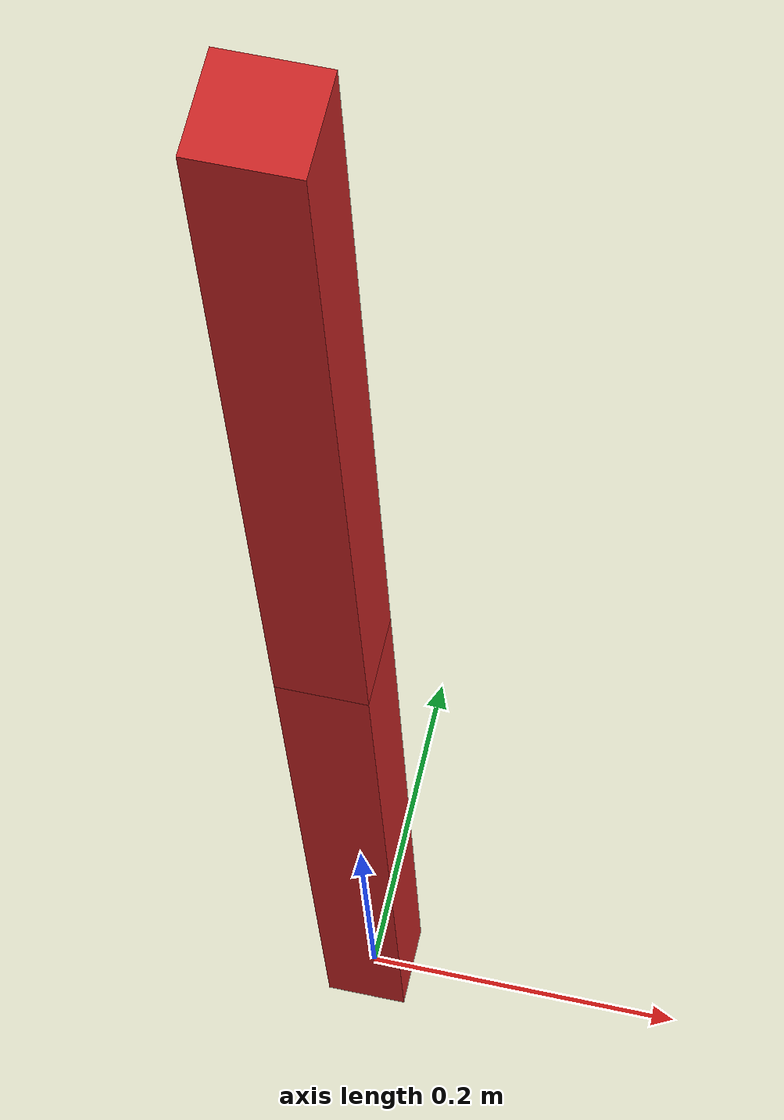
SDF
<sdf version='1.5'>
  <model name='twolink'>
    <link name='link_1'>
      <pose frame=''>0 0 1 0 -0 0</pose>
      <inertial>
        <pose frame=''>0 0 -0.25 0 -0 0</pose>
        <mass>9.375</mass>
        <inertia>
          <ixx>0.197266</ixx>
          <ixy>0</ixy>
          <ixz>0</ixz>
          <iyy>0.197266</iyy>
          <iyz>0</iyz>
          <izz>0.00390625</izz>
        </inertia>
      </inertial>
      <visual name='link_1_visual'>
        <pose frame=''>0 0 -0.25 0 -0 0</pose>
        <geometry>
          <box>
            <size>0.05 0.05 0.5</size>
          </box>
        </geometry>
        <material>
          <script>
            <name>Gazebo/Red</name>
            <uri>__default__</uri>
          </script>
        </material>
      </visual>
      <gravity>1</gravity>
      <velocity_decay/>
      <self_collide>1</self_collide>
    </link>
    <joint name='joint_1' type='revolute'>
      <child>link_1</child>
      <parent>world</parent>
      <axis>
        <xyz>1 0 0</xyz>
        <limit>
          <lower>-1e+16</lower>
          <upper>1e+16</upper>
        </limit>
        <dynamics>
          <damping>50</damping>
          <friction>0</friction>
          <spring_reference>0</spring_reference>
          <spring_stiffness>0</spring_stiffness>
        </dynamics>
        <use_parent_model_frame>1</use_parent_model_frame>
      </axis>
    </joint>
    <link name='link_2'>
      <pose frame=''>0 0 0.5 0 -0 0</pose>
      <inertial>
        <pose frame=''>0 0 -0.25 0 -0 0</pose>
        <mass>9.375</mass>
        <inertia>
          <ixx>0.197266</ixx>
          <ixy>0</ixy>
          <ixz>0</ixz>
          <iyy>0.197266</iyy>
          <iyz>0</iyz>
          <izz>0.00390625</izz>
        </inertia>
      </inertial>
      <visual name='link_2_visual'>
        <pose frame=''>0 0 -0.25 0 -0 0</pose>
        <geometry>
          <box>
            <size>0.05 0.05 0.5</size>
          </box>
        </geometry>
        <material>
          <script>
            <name>Gazebo/Red</name>
            <uri>__default__</uri>
          </script>
        </material>
      </visual>
      <gravity>1</gravity>
      <velocity_decay/>
      <self_collide>1</self_collide>
    </link>
    <joint name='joint_2' type='revolute'>
      <child>link_2</child>
      <parent>link_1</parent>
      <axis>
        <xyz>1 0 0</xyz>
        <limit>
          <lower>-1e+16</lower>
          <upper>1e+16</upper>
        </limit>
        <dynamics>
          <damping>50</damping>
          <friction>0</friction>
          <spring_reference>0</spring_reference>
          <spring_stiffness>0</spring_stiffness>
        </dynamics>
        <use_parent_model_frame>1</use_parent_model_frame>
      </axis>
    </joint>
    <static>0</static>
    <plugin name='gazebo_ros_control' filename='libgazebo_ros_control.so'>
      <robotNamespace>/twolink</robotNamespace>
      <robotSimType>gazebo_ros_control/DefaultRobotHWSim</robotSimType>
    </plugin>
  </model>
</sdf>
